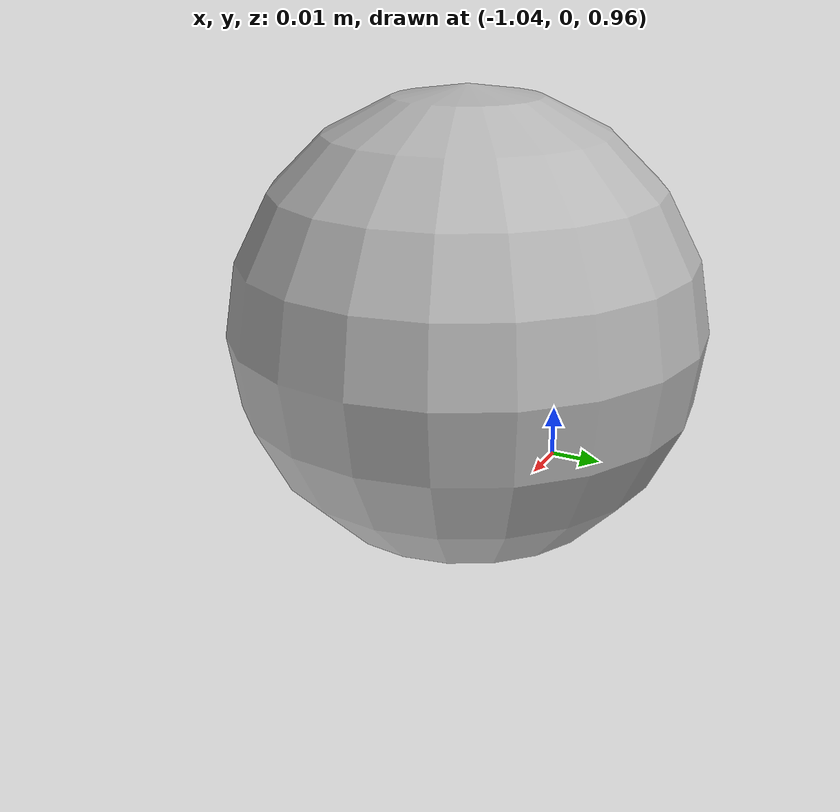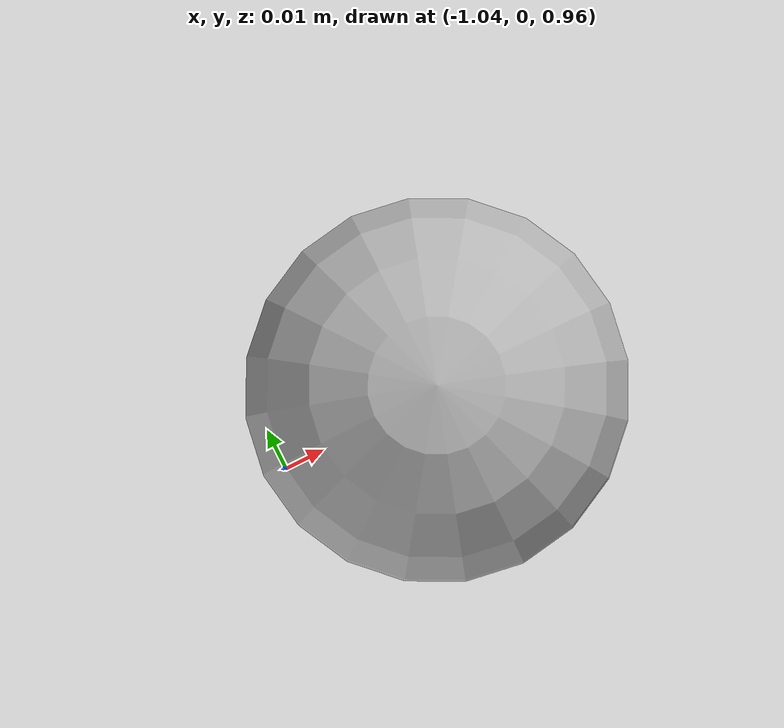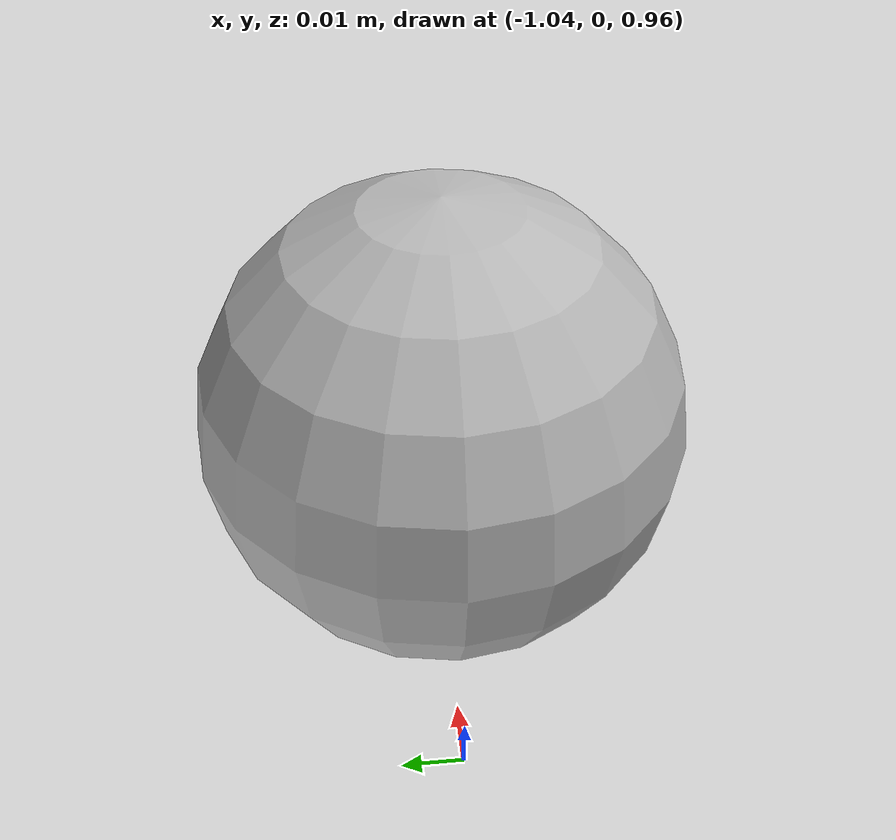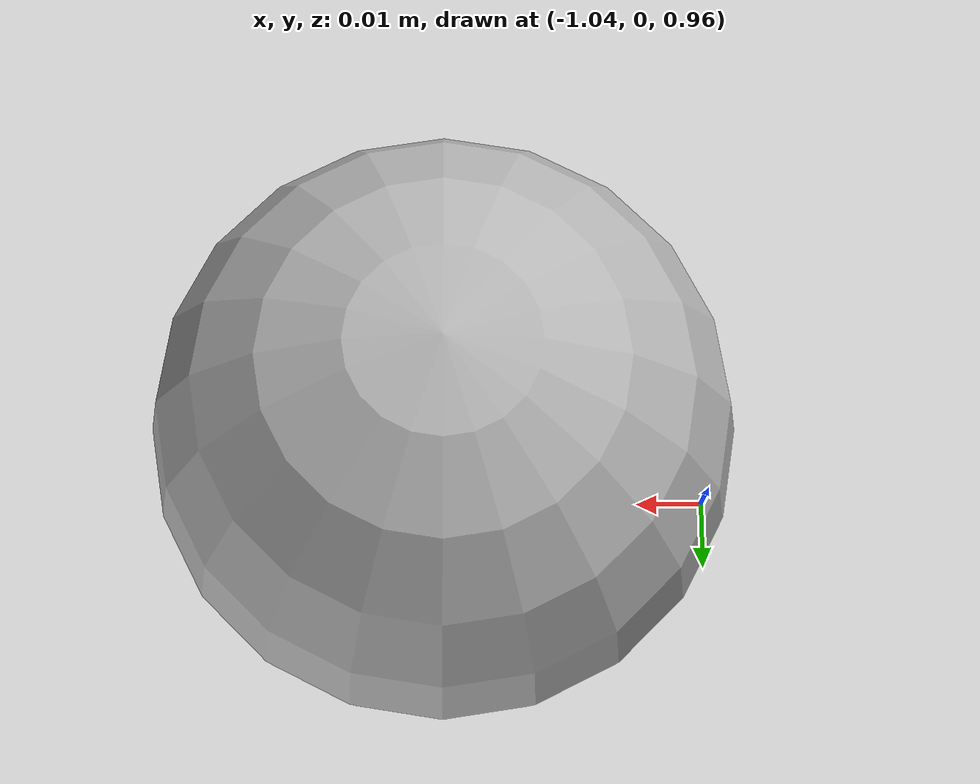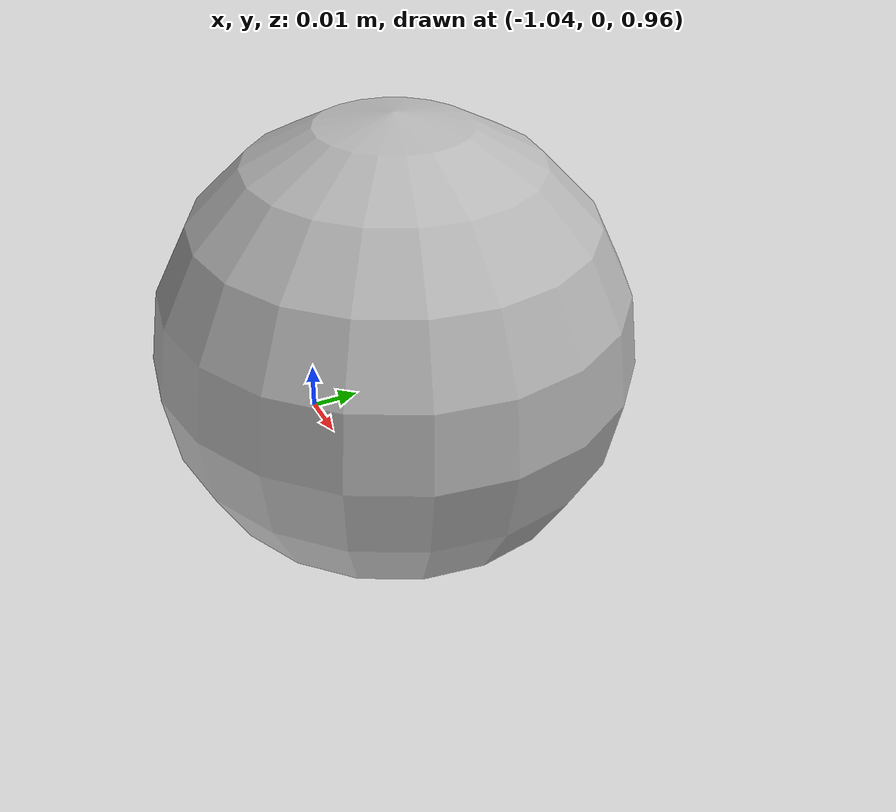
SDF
<?xml version="1.0" ?>
<sdf version="1.6">
  <world name="default">

    <include>
      <uri>model://sun</uri>
    </include>

    <model name="ground_plane">
      <static>true</static>
      <link name="link">
        <collision name="collision">
          <geometry>
            <plane>
              <normal>0 0 1</normal>
              <size>100 100</size>
            </plane>
          </geometry>
          <surface>
            <friction>
              <ode>
                <mu>100</mu>
                <mu2>50</mu2>
              </ode>
            </friction>
            <bounce>
              <restitution_coefficient>1.0</restitution_coefficient>
              <threshold>0</threshold>
            </bounce>
            <contact>
              <ode>
                <max_vel>10000</max_vel>
                <min_depth>0.001</min_depth>
              </ode>
            </contact>
          </surface>
        </collision>
        <visual name="visual">
          <cast_shadows>false</cast_shadows>
          <geometry>
            <plane>
              <normal>0 0 1</normal>
              <size>100 100</size>
            </plane>
          </geometry>
          <material>
            <script>
              <uri>file://media/materials/scripts/gazebo.material</uri>
              <name>Gazebo/Grey</name>
            </script>
          </material>
        </visual>
      </link>
    </model>

    <model name="ball">
      <allow_auto_disable>false</allow_auto_disable>
      <pose>-1 0 1 0 0 0</pose>
      <static>false</static>
      <link name="link">
        <inertial>
          <mass>0.026</mass>
          <!-- inertia based on solid sphere 2/5 mr^2 -->
          <inertia>
            <ixx>1.664e-5</ixx>
            <iyy>1.664e-5</iyy>
            <izz>1.664e-5</izz>
            <ixy>0</ixy>
            <ixz>0</ixz>
            <iyz>0</iyz>
          </inertia>
        </inertial>
        <collision name="collision">
          <geometry>
            <sphere>
              <radius>0.04</radius>
            </sphere>
          </geometry>
          <surface>
            <bounce>
              <restitution_coefficient>1.0</restitution_coefficient>
              <threshold>0</threshold>
            </bounce>
            <contact>
              <ode>
                <max_vel>10000</max_vel>
                <min_depth>0.001</min_depth>
              </ode>
            </contact>
          </surface>
        </collision>
        <visual name="visual">
          <geometry>
            <sphere>
              <radius>0.04</radius>
            </sphere>
          </geometry>
        </visual>
      </link>
    </model>

    <model name="camera_model">
      <pose>0 0 0.5 0 0 3.14</pose>
      <static>true</static>
      <link name="camera_link">
        <sensor type="multicamera" name="camera1">
          <pose>0 -0.2 0 0 0 0</pose>
          <update_rate>60</update_rate>
          <visualize>true</visualize>
          <camera name="left">
            <horizontal_fov>1.3962634</horizontal_fov>
            <image>
              <width>640</width>
              <height>480</height>
              <format>R8G8B8</format>
            </image>
            <clip>
              <near>0.02</near>
              <far>300</far>
            </clip>
            <noise>
              <type>gaussian</type>
              <mean>0.0</mean>
              <stddev>0.007</stddev>
            </noise>
          </camera>
          <camera name="right">
            <pose>0 0.4 0 0 0 0</pose>
            <horizontal_fov>0.7</horizontal_fov>
            <image>
              <width>320</width>
              <height>480</height>
              <format>R8G8B8</format>
            </image>
            <clip>
              <near>0.02</near>
              <far>300</far>
            </clip>
            <noise>
              <type>gaussian</type>
              <mean>0.0</mean>
              <stddev>0.007</stddev>
            </noise>
          </camera>
          <plugin name="camera_controller" filename="libgazebo_ros_camera.so">
            <ros>
              <namespace>demo_cam</namespace>
              <!-- topics need to be prefixed with camera_name for remapping -->
              <remapping>mycamera/left/image_raw:=mycamera/left/image_demo</remapping>
              <remapping>mycamera/right/image_raw:=mycamera/right/image_demo</remapping>
              <remapping>mycamera/left/camera_info:=mycamera/left/camera_info_demo</remapping>
              <remapping>mycamera/right/camera_info:=mycamera/right/camera_info_demo</remapping>
            </ros>

            <camera_name>mycamera</camera_name>

            <!-- Specify if triggered camera -->
            <triggered>false</triggered>
          </plugin>
        </sensor>
      </link>
    </model>
  </world>
</sdf>
